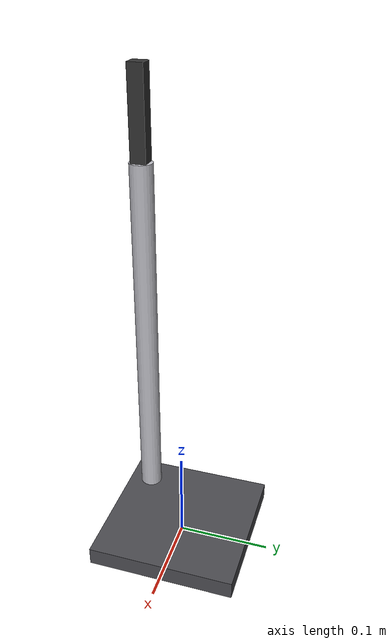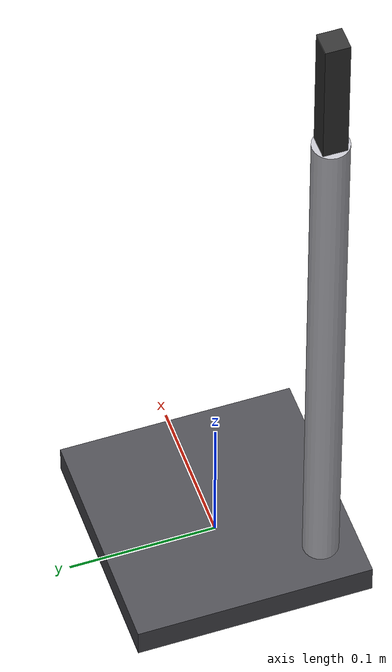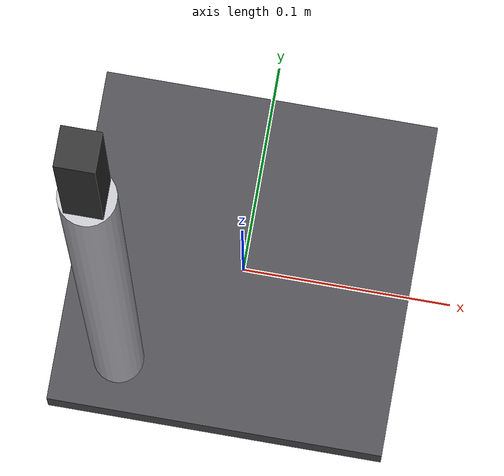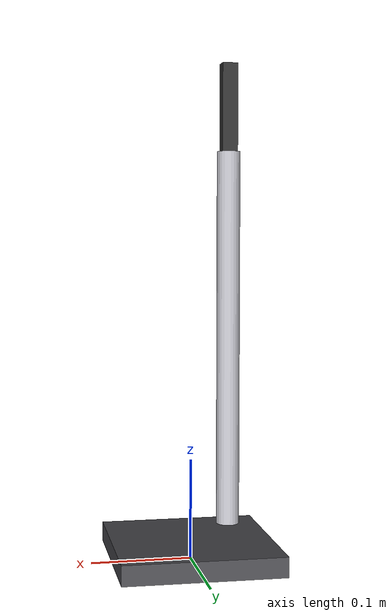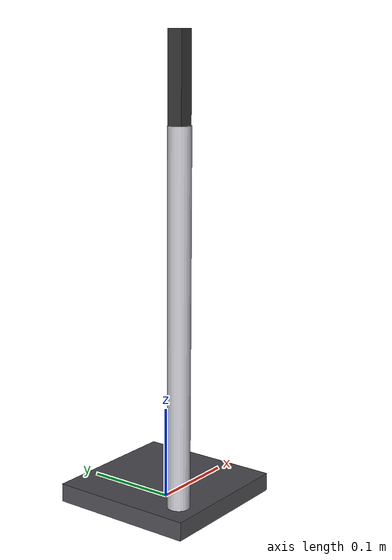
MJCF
<?xml version="1.0" encoding="utf-8"?>
<mujoco model="impact_tester_charpy">
  <compiler angle="radian" autolimits="true"/>
  <default>
    <default class="body"><geom contype="1" conaffinity="1"/></default>
  </default>
  <worldbody>
    <body name="base">
      <geom type="box" size="0.08 0.08 0.01" pos="0 0 0.01" rgba="0.3 0.3 0.32 1" class="body"/>
      <geom type="cylinder" size="0.012 0.20" pos="-0.05 -0.055 0.21" rgba="0.75 0.75 0.78 1" class="body"/>
      <body name="pendulum_arm" pos="-0.05 -0.055 0.41">
        <joint name="pendulum_arm_joint" type="hinge" axis="0 1 0" range="-1.5 0" damping="0.1" frictionloss="0.02"/>
  <geom type="box" size="0.008 0.008 0.18" pos="0 0 -0.09" rgba="0.2 0.2 0.2 1" class="body"/>
      </body>
    </body>
  </worldbody>
</mujoco>
